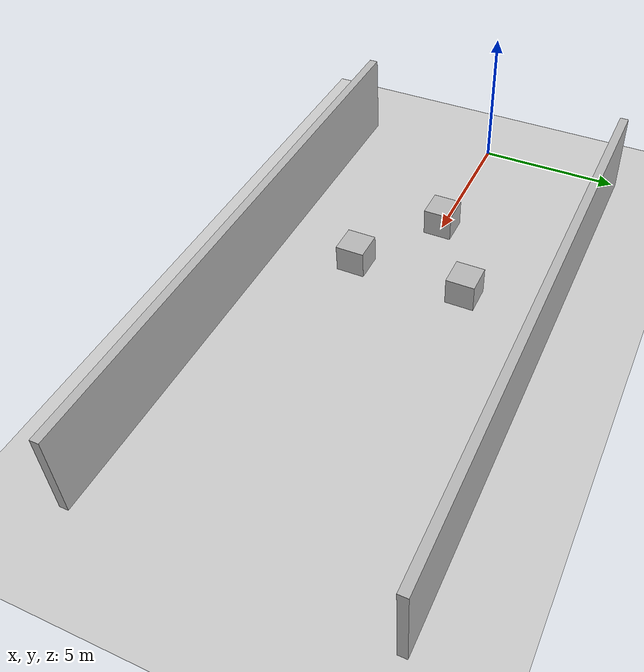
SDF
<?xml version="1.0" ?>
<sdf version="1.6">
  <world name="hybrid_astar_test_world">
    <include>
      <uri>model://sun</uri>
    </include>

    <include>
      <uri>model://ground_plane</uri>
    </include>

    <!-- 光照 -->
    <light name="sun" type="directional">
      <pose>0 0 10 0 -0 0</pose>
    </light>

    <!-- 障碍物: 几个箱子形成简单的测试场景 -->
    <model name="obstacle_1">
      <pose>5 0 0.5 0 0 0</pose>
      <link name="link">
        <visual name="visual">
          <geometry><box><size>1 1 1</size></box></geometry>
        </visual>
        <collision name="collision">
          <geometry><box><size>1 1 1</size></box></geometry>
        </collision>
      </link>
    </model>

    <model name="obstacle_2">
      <pose>8 2 0.5 0 0 0</pose>
      <link name="link">
        <visual name="visual">
          <geometry><box><size>1 1 1</size></box></geometry>
        </visual>
        <collision name="collision">
          <geometry><box><size>1 1 1</size></box></geometry>
        </collision>
      </link>
    </model>

    <model name="obstacle_3">
      <pose>8 -2 0.5 0 0 0</pose>
      <link name="link">
        <visual name="visual">
          <geometry><box><size>1 1 1</size></box></geometry>
        </visual>
        <collision name="collision">
          <geometry><box><size>1 1 1</size></box></geometry>
        </collision>
      </link>
    </model>

    <model name="wall_top">
      <pose>10 5 1.5 0 0 0</pose>
      <link name="link">
        <visual name="visual">
          <geometry><box><size>20 0.3 3</size></box></geometry>
        </visual>
        <collision name="collision">
          <geometry><box><size>20 0.3 3</size></box></geometry>
        </collision>
      </link>
    </model>

    <model name="wall_bottom">
      <pose>10 -5 1.5 0 0 0</pose>
      <link name="link">
        <visual name="visual">
          <geometry><box><size>20 0.3 3</size></box></geometry>
        </visual>
        <collision name="collision">
          <geometry><box><size>20 0.3 3</size></box></geometry>
        </collision>
      </link>
    </model>
  </world>
</sdf>
